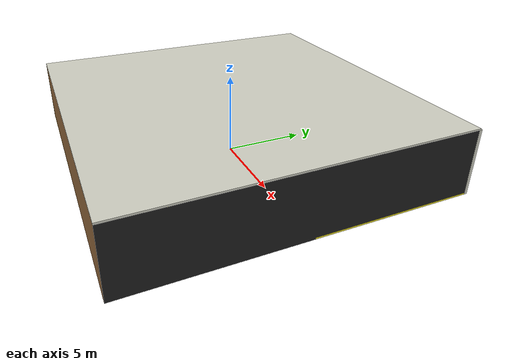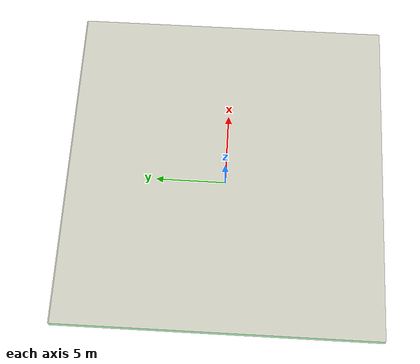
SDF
<sdf version="1.4">
 <world name="default">
  <physics type="ode">
   <max_step_size>0.001</max_step_size>
   <real_time_factor>1</real_time_factor>
   <real_time_update_rate>1000</real_time_update_rate>
   <gravity>0 0 -9.8</gravity>
  </physics>
  <scene><ambient>0.4 0.4 0.4 1</ambient><background>0.7 0.7 0.7 1</background><shadows>1</shadows></scene>
  <model name="Surrounding">
   <static>1</static>
   <link name="Ceiling">
    <collision name="Ceiling_Collision"><geometry><box><size>20 20 0.1</size></box></geometry></collision>
    <visual name="Ceiling_Visual">
     <geometry><box><size>20 20 0.1</size></box></geometry>
     <material>
      <script><uri>file://media/materials/scripts/gazebo.material</uri><name>Gazebo/PaintedWall</name></script>
     </material>
    </visual>
    <pose>0 0 4.05 0 0 0</pose>
   </link>
   <link name="Wall_South">
    <collision name="Wall_South_Collision">
     <geometry><box><size>20 0 4</size></box></geometry>
     <pose>0 0 2 0 -0 0</pose>
    </collision>
    <visual name="Wall_South_Visual">
     <pose>0 0 2 0 -0 0</pose>
     <geometry><box><size>20 0 4</size></box></geometry>
     <material>
      <script><uri>file://media/materials/scripts/gazebo.material</uri><name>Gazebo/WoodFloor</name></script>
     </material>
    </visual>
    <velocity_decay><linear>0</linear><angular>0</angular></velocity_decay>
    <pose>0 -10 0 0 -0 0</pose>
   </link>
   <link name="Wall_East">
    <collision name="Wall_21_Collision">
     <geometry><box><size>20 0 4</size></box></geometry>
     <pose>0 0 2 0 -0 0</pose>
    </collision>
    <visual name="Wall_21_Visual">
     <pose>0 0 2 0 -0 0</pose>
     <geometry><box><size>20 0 4</size></box></geometry>
     <material>
      <script><uri>file://media/materials/scripts/gazebo.material</uri><name>Gazebo/Black</name></script>
     </material>
    </visual>
    <velocity_decay><linear>0</linear><angular>0</angular></velocity_decay>
    <pose>10 0 0 0 -0 1.5708</pose>
   </link>
   <link name="Wall_North">
    <collision name="Wall_22_Collision">
     <geometry><box><size>20 0.2 4</size></box></geometry>
     <pose>0 0 2 0 -0 0</pose>
    </collision>
    <visual name="Wall_22_Visual">
     <pose>0 0 2 0 -0 0</pose>
     <geometry><box><size>20 0.2 4</size></box></geometry>
     <material>
      <script><uri>file://media/materials/scripts/gazebo.material</uri><name>Gazebo/PaintedWall</name></script>
     </material>
    </visual>
    <velocity_decay><linear>0</linear><angular>0</angular></velocity_decay>
    <pose>0 10 0 0 -0 0</pose>
   </link>
   <link name="Wall_West">
    <collision name="Wall_23_Collision">
     <geometry><box><size>20 0.2 4</size></box></geometry>
     <pose>0 0 2 0 -0 0</pose>
    </collision>
    <visual name="Wall_23_Visual">
     <pose>0 0 2 0 -0 0</pose>
     <geometry><box><size>20 0.2 4</size></box></geometry>
     <material>
      <script><uri>file://media/materials/scripts/gazebo.material</uri><name>Gazebo/GreenTransparent</name></script>
     </material>
    </visual>
    <velocity_decay><linear>0</linear><angular>0</angular></velocity_decay>
    <pose>-10 0 0 0 0 -1.5708</pose>
   </link>
   <link name="Ground_link">
    <collision name="collision">
     <pose>0 0 .05 0 -0 0</pose>
     <geometry><box><size>20 20 0.1</size></box></geometry>
    </collision>
    <visual name="visual">
     <pose>0 0 .05 0 -0 0</pose>
     <geometry><box><size>20 20 0.1</size></box></geometry>
     <material>
      <script><uri>file://media/materials/scripts/gazebo.material</uri><name>Gazebo/YellowGlow</name></script>
     </material>
    </visual>
   </link>
   <static>1</static>
  </model>
  <spherical_coordinates>
   <surface_model>EARTH_WGS84</surface_model>
   <latitude_deg>0</latitude_deg>
   <longitude_deg>0</longitude_deg>
   <elevation>0</elevation>
   <heading_deg>0</heading_deg>
  </spherical_coordinates>
  <light name="lightball_0" type="diffuse">
   <diffuse>0.8 0.8 0.8 1</diffuse>
   <specular>0.2 0.2 0.2 1</specular>
   <attenuation>
    <range>100</range>
    <constant>0.7</constant>
    <linear>0.01</linear>
    <quadratic>0.001</quadratic>
   </attenuation>
   <direction>-0.5 0.1 -0.9</direction>
   <pose>0.131169382143 -4.90257548214 1.02983200287 0 0 0</pose>
  </light>
  <light name="lightball_1" type="diffuse">
   <diffuse>0.8 0.8 0.8 1</diffuse>
   <specular>0.2 0.2 0.2 1</specular>
   <attenuation>
    <range>100</range>
    <constant>0.7</constant>
    <linear>0.01</linear>
    <quadratic>0.001</quadratic>
   </attenuation>
   <direction>-0.5 0.1 -0.9</direction>
   <pose>-6.06981173339 3.97688168896 2.42552770501 0 0 0</pose>
  </light>
  <light name="lightball_2" type="diffuse">
   <diffuse>0.8 0.8 0.8 1</diffuse>
   <specular>0.2 0.2 0.2 1</specular>
   <attenuation>
    <range>100</range>
    <constant>0.7</constant>
    <linear>0.01</linear>
    <quadratic>0.001</quadratic>
   </attenuation>
   <direction>-0.5 0.1 -0.9</direction>
   <pose>-7.43339035357 -5.13623907551 0.578231985556 0 0 0</pose>
  </light>
  <light name="lightball_3" type="diffuse">
   <diffuse>0.8 0.8 0.8 1</diffuse>
   <specular>0.2 0.2 0.2 1</specular>
   <attenuation>
    <range>100</range>
    <constant>0.7</constant>
    <linear>0.01</linear>
    <quadratic>0.001</quadratic>
   </attenuation>
   <direction>-0.5 0.1 -0.9</direction>
   <pose>-4.95081354763 -0.233314810985 2.99436395481 0 0 0</pose>
  </light>
  <light name="lightball_4" type="diffuse">
   <diffuse>0.8 0.8 0.8 1</diffuse>
   <specular>0.2 0.2 0.2 1</specular>
   <attenuation>
    <range>100</range>
    <constant>0.7</constant>
    <linear>0.01</linear>
    <quadratic>0.001</quadratic>
   </attenuation>
   <direction>-0.5 0.1 -0.9</direction>
   <pose>2.79951792403 9.83029809307 2.86392900544 0 0 0</pose>
  </light>
  <light name="lightball_5" type="diffuse">
   <diffuse>0.8 0.8 0.8 1</diffuse>
   <specular>0.2 0.2 0.2 1</specular>
   <attenuation>
    <range>100</range>
    <constant>0.7</constant>
    <linear>0.01</linear>
    <quadratic>0.001</quadratic>
   </attenuation>
   <direction>-0.5 0.1 -0.9</direction>
   <pose>-6.85274540135 -1.89962754119 1.29878746472 0 0 0</pose>
  </light>
  <include><uri>model://cabinet</uri><pose>-7.51804684293 -0.959950440613 0 0 0 2.42732480241</pose></include>
  <include><uri>model://table</uri><pose>1.10511168303 7.32524784058 0 0 0 0.320410860362</pose></include>
  <include>
   <uri>model://construction_cone</uri>
   <pose>7.40655530497 -7.39313242764 0 0 0 0.052189881298</pose>
  </include>
 </world>
</sdf>

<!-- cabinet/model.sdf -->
<sdf version="1.5">
  <model name="cabinet">
    <static>true</static>
    <link name="cabinet_bottom_plate">
      <inertial>
        <pose>0 0 -1 0 0 0</pose>
        <inertia>
          <ixx>2.050000</ixx>
          <ixy>0</ixy>
          <ixz>0</ixz>
          <iyy>2.050000</iyy>
          <iyz>0</iyz>
          <izz>2.050000</izz>
        </inertia>
        <mass>25.000000</mass>
      </inertial>
      <collision name="cabinet_bottom_plate_geom">
        <pose>0 0 0.010000 0 0 0</pose>
        <geometry>
          <box>
            <size>0.450000 0.450000 0.020000</size>
          </box>
        </geometry>
      </collision>
      <visual name="cabinet_bottom_plate_geom_visual">
        <pose>0 0 0.010000 0 0 0</pose>
        <geometry>
          <box>
            <size>0.450000 0.450000 0.020000</size>
          </box>
        </geometry>
        <material>
          <script>
            <uri>model://media/materials/scripts/gazebo.material</uri>
            <name>Gazebo/Wood</name>
          </script>
        </material>
      </visual>
      <collision name="cabinet_bottom_plate_geom_cabinet_back_plate">
        <pose>0.235000 0 0.510000 0 0 0</pose>
        <geometry>
          <box>
            <size>0.020000 0.450000 1.020000</size>
          </box>
        </geometry>
      </collision>
      <visual name="cabinet_bottom_plate_geom_cabinet_back_plate_visual">
        <pose>0.235000 0 0.510000 0 0 0</pose>
        <geometry>
          <box>
            <size>0.020000 0.450000 1.020000</size>
          </box>
        </geometry>
        <material>
          <script>
            <uri>model://media/materials/scripts/gazebo.material</uri>
            <name>Gazebo/Wood</name>
          </script>
        </material>
      </visual>
      <collision name="cabinet_bottom_plate_geom_cabinet_left_plate">
        <pose>0 0.235000 0.510000 0 0 0</pose>
        <geometry>
          <box>
            <size>0.450000 0.020000 1.020000</size>
          </box>
        </geometry>
      </collision>
      <visual name="cabinet_bottom_plate_geom_cabinet_left_plate_visual">
        <pose>0 0.235000 0.510000 0 0 0</pose>
        <geometry>
          <box>
            <size>0.450000 0.020000 1.020000</size>
          </box>
        </geometry>
        <material>
          <script>
            <uri>model://media/materials/scripts/gazebo.material</uri>
            <name>Gazebo/Wood</name>
          </script>
        </material>
      </visual>
      <collision name="cabinet_bottom_plate_geom_cabinet_middle_plate">
        <pose>0 0 0.510000 0 0 0</pose>
        <geometry>
          <box>
            <size>0.450000 0.450000 0.020000</size>
          </box>
        </geometry>
      </collision>
      <visual name="cabinet_bottom_plate_geom_cabinet_middle_plate_visual">
        <pose>0 0 0.510000 0 0 0</pose>
        <geometry>
          <box>
            <size>0.450000 0.450000 0.020000</size>
          </box>
        </geometry>
        <material>
          <script>
            <uri>model://media/materials/scripts/gazebo.material</uri>
            <name>Gazebo/Wood</name>
          </script>
        </material>
      </visual>
      <collision name="cabinet_bottom_plate_geom_cabinet_right_plate">
        <pose>0 -0.235000 0.510000 0 0 0</pose>
        <geometry>
          <box>
            <size>0.450000 0.020000 1.020000</size>
          </box>
        </geometry>
      </collision>
      <visual name="cabinet_bottom_plate_geom_cabinet_right_plate_visual">
        <pose>0 -0.235000 0.510000 0 0 0</pose>
        <geometry>
          <box>
            <size>0.450000 0.020000 1.020000</size>
          </box>
        </geometry>
        <material>
          <script>
            <uri>model://media/materials/scripts/gazebo.material</uri>
            <name>Gazebo/Wood</name>
          </script>
        </material>
      </visual>
      <collision name="cabinet_bottom_plate_geom_cabinet_top_plate">
        <pose>0 0 1.010000 0 0 0</pose>
        <geometry>
          <box>
            <size>0.450000 0.450000 0.020000</size>
          </box>
        </geometry>
      </collision>
      <visual name="cabinet_bottom_plate_geom_cabinet_top_plate_visual">
        <pose>0 0 1.010000 0 0 0</pose>
        <geometry>
          <box>
            <size>0.450000 0.450000 0.020000</size>
          </box>
        </geometry>
        <material>
          <script>
            <uri>model://media/materials/scripts/gazebo.material</uri>
            <name>Gazebo/Wood</name>
          </script>
        </material>
      </visual>
    </link>
  </model>
</sdf>

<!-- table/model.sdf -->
<sdf version="1.5">
  <model name="table">
    <static>true</static>
    <link name="link">
      <collision name="surface">
        <pose>0 0 1.0 0 0 0</pose>
        <geometry>
          <box>
            <size>1.5 0.8 0.03</size>
          </box>
        </geometry>
        <surface>
          <friction>
            <ode>
              <mu>0.6</mu>
              <mu2>0.6</mu2>
            </ode>
          </friction>
        </surface>
      </collision>
      <visual name="visual1">
        <pose>0 0 1.0 0 0 0</pose>
        <geometry>
          <box>
            <size>1.5 0.8 0.03</size>
          </box>
        </geometry>
        <material>
          <script>
            <uri>model://media/materials/scripts/gazebo.material</uri>
            <name>Gazebo/Wood</name>
          </script>
        </material>
      </visual>
      <collision name="front_left_leg">
        <pose>0.68 0.38 0.5 0 0 0</pose>
        <geometry>
          <cylinder>
            <radius>0.02</radius>
            <length>1.0</length>
          </cylinder>
        </geometry>
      </collision>
      <visual name="front_left_leg">
        <pose>0.68 0.38 0.5 0 0 0</pose>
        <geometry>
          <cylinder>
            <radius>0.02</radius>
            <length>1.0</length>
          </cylinder>
        </geometry>
        <material>
          <script>
            <uri>model://media/materials/scripts/gazebo.material</uri>
            <name>Gazebo/Grey</name>
          </script>
        </material>
      </visual>
      <collision name="front_right_leg">
        <pose>0.68 -0.38 0.5 0 0 0</pose>
        <geometry>
          <cylinder>
            <radius>0.02</radius>
            <length>1.0</length>
          </cylinder>
        </geometry>
      </collision>
      <visual name="front_right_leg">
        <pose>0.68 -0.38 0.5 0 0 0</pose>
        <geometry>
          <cylinder>
            <radius>0.02</radius>
            <length>1.0</length>
          </cylinder>
        </geometry>
        <material>
          <script>
            <uri>model://media/materials/scripts/gazebo.material</uri>
            <name>Gazebo/Grey</name>
          </script>
        </material>
      </visual>
      <collision name="back_right_leg">
        <pose>-0.68 -0.38 0.5 0 0 0</pose>
        <geometry>
          <cylinder>
            <radius>0.02</radius>
            <length>1.0</length>
          </cylinder>
        </geometry>
      </collision>
      <visual name="back_right_leg">
        <pose>-0.68 -0.38 0.5 0 0 0</pose>
        <geometry>
          <cylinder>
            <radius>0.02</radius>
            <length>1.0</length>
          </cylinder>
        </geometry>
        <material>
          <script>
            <uri>model://media/materials/scripts/gazebo.material</uri>
            <name>Gazebo/Grey</name>
          </script>
        </material>
      </visual>
      <collision name="back_left_leg">
        <pose>-0.68 0.38 0.5 0 0 0</pose>
        <geometry>
          <cylinder>
            <radius>0.02</radius>
            <length>1.0</length>
          </cylinder>
        </geometry>
      </collision>
      <visual name="back_left_leg">
        <pose>-0.68 0.38 0.5 0 0 0</pose>
        <geometry>
          <cylinder>
            <radius>0.02</radius>
            <length>1.0</length>
          </cylinder>
        </geometry>
        <material>
          <script>
            <uri>model://media/materials/scripts/gazebo.material</uri>
            <name>Gazebo/Grey</name>
          </script>
        </material>
      </visual>
    </link>
  </model>
</sdf>

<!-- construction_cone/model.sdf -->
<sdf version="1.5">
  <model name="Construction Cone">
    <link name="link">
      <collision name="collision">
        <geometry>
          <mesh>
            <scale>10 10 10</scale>
            <uri>file://isr-testbed/construction_cone/meshes/construction_cone.dae</uri>
          </mesh>
        </geometry>
      </collision>
      <visual name="visual">
        <geometry>
          <mesh>
            <scale>10 10 10</scale>
            <uri>file://isr-testbed/construction_cone/meshes/construction_cone.dae</uri>
          </mesh>
        </geometry>
      </visual>
    </link>
  </model>
</sdf>
